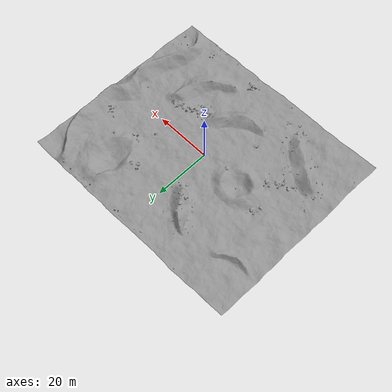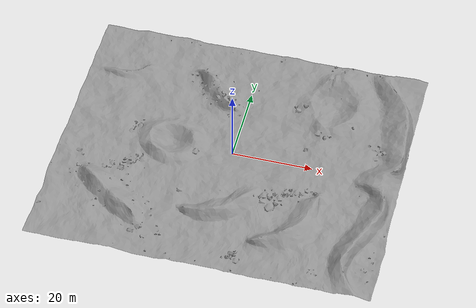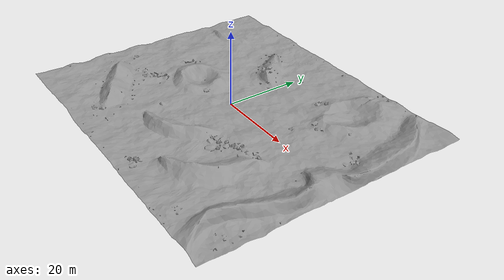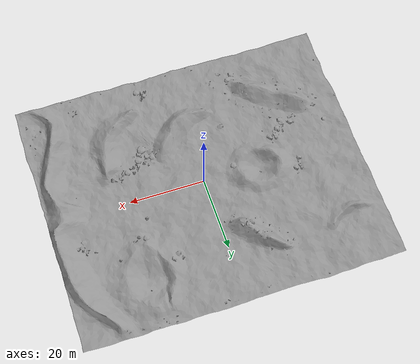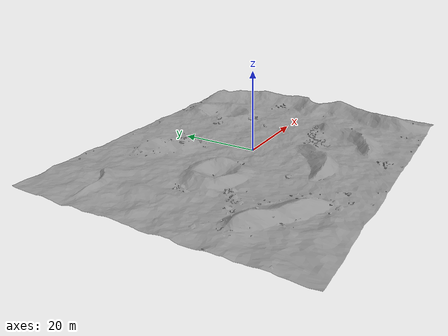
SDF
<?xml version="1.0"?>
<sdf version="1.4">
  <world name="default">
    <include>
      <uri>model://sun</uri>
    </include>
    <model name="marsyard">
      <pose>0 0 0  0 0 0</pose>
      <static>true</static>
      <link name="body">
        <visual name="visual">
          <geometry>
            <mesh><uri>file:///home/max/catkin_ws/src/leo/leo-vanilla/leo_gazebo/meshes/model42.stl</uri><scale>0.05 0.05 0.05</scale></mesh>
          </geometry>
<material>
            <script>
              <uri>file://media/materials/scripts/gazebo.material</uri>
              <name>Gazebo/Grey</name>
            </script>
            <ambient>1 1 1 1</ambient>
          </material>
        </visual>
<collision name="collision">
          <geometry>
            <mesh><uri>file:///home/max/catkin_ws/src/leo/leo-vanilla/leo_gazebo/meshes/model42.stl</uri><scale>0.05 0.05 0.05</scale></mesh>
          </geometry>
        </collision>
      </link>
    </model>
  </world>
</sdf>
